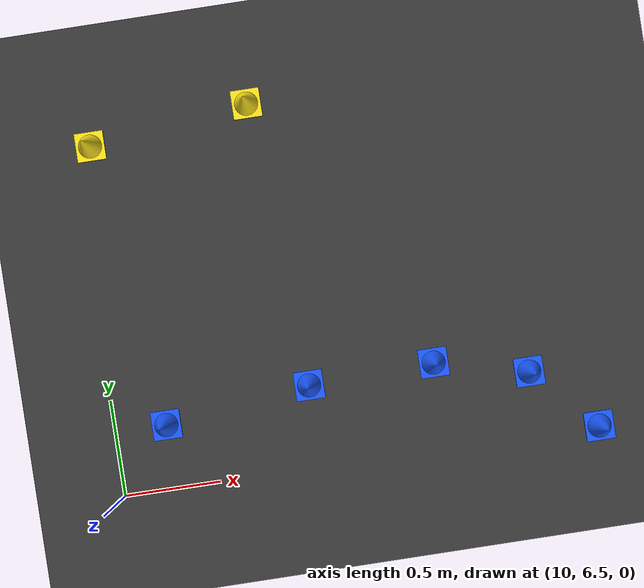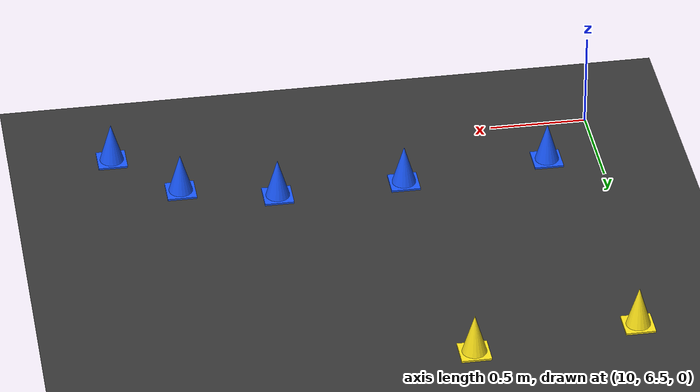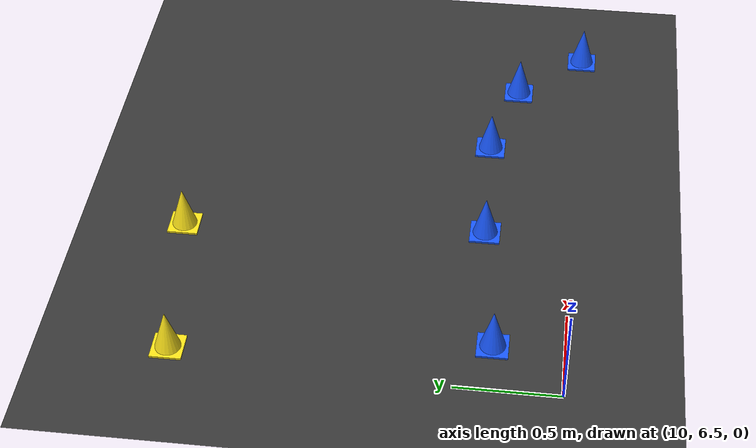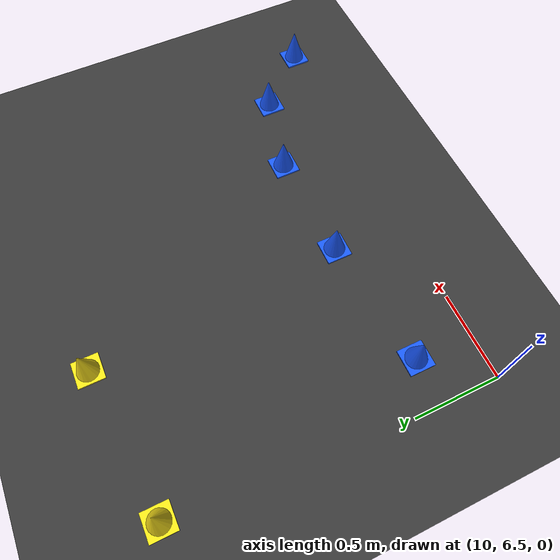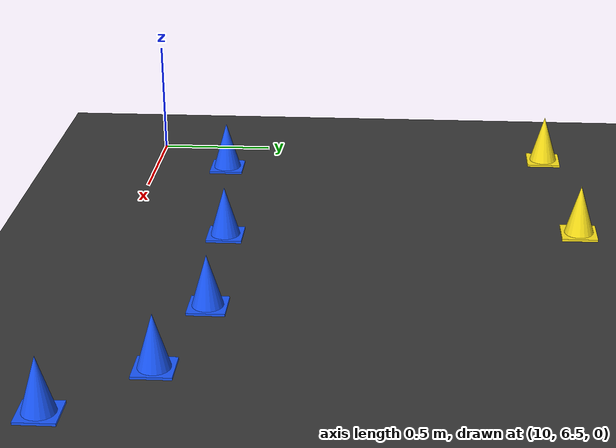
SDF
<sdf version="1.8">
 <world name="track_with_cones">
  <model name="ground_plane">
   <static>true</static>
   <link name="link">
    <collision name="collision">
     <geometry><plane><normal>0 0 1</normal><size>100 100</size></plane></geometry>
     <surface><friction><ode><mu>100</mu><mu2>100</mu2></ode></friction></surface>
    </collision>
    <visual name="visual">
     <geometry><plane><normal>0 0 1</normal><size>100 100</size></plane></geometry>
     <material>
      <ambient>0.22 0.22 0.22 1</ambient>
      <diffuse>0.22 0.22 0.22 1</diffuse>
      <specular>0.05 0.05 0.05 1</specular>
     </material>
    </visual>
   </link>
  </model>
  <model name="cone_blue_22">
   <static>true</static>
   <pose>12.4927 6.4902 0.11 0 0 0</pose>
   <link name="link">
    <visual name="base_visual">
     <pose>0 0 -0.105 0 0 0</pose>
     <geometry><box><size>0.15 0.15 0.01</size></box></geometry>
     <material>
      <ambient>0.05 0.25 0.95 1.0</ambient>
      <diffuse>0.10 0.35 1.00 1.0</diffuse>
      <specular>0.2 0.2 0.2 1.0</specular>
     </material>
    </visual>
    <visual name="cone_visual">
     <geometry><cone><radius>0.065</radius><length>0.22</length></cone></geometry>
     <material>
      <ambient>0.05 0.25 0.95 1.0</ambient>
      <diffuse>0.10 0.35 1.00 1.0</diffuse>
      <specular>0.2 0.2 0.2 1.0</specular>
     </material>
    </visual>
    <collision name="collision">
     <geometry><cylinder><radius>0.065</radius><length>0.22</length></cylinder></geometry>
    </collision>
   </link>
  </model>
  <model name="cone_blue_23">
   <static>true</static>
   <pose>12.1744 6.8234 0.11 0 0 0</pose>
   <link name="link">
    <visual name="base_visual">
     <pose>0 0 -0.105 0 0 0</pose>
     <geometry><box><size>0.15 0.15 0.01</size></box></geometry>
     <material>
      <ambient>0.05 0.25 0.95 1.0</ambient>
      <diffuse>0.10 0.35 1.00 1.0</diffuse>
      <specular>0.2 0.2 0.2 1.0</specular>
     </material>
    </visual>
    <visual name="cone_visual">
     <geometry><cone><radius>0.065</radius><length>0.22</length></cone></geometry>
     <material>
      <ambient>0.05 0.25 0.95 1.0</ambient>
      <diffuse>0.10 0.35 1.00 1.0</diffuse>
      <specular>0.2 0.2 0.2 1.0</specular>
     </material>
    </visual>
    <collision name="collision">
     <geometry><cylinder><radius>0.065</radius><length>0.22</length></cylinder></geometry>
    </collision>
   </link>
  </model>
  <model name="cone_blue_24">
   <static>true</static>
   <pose>11.6899 6.9446 0.11 0 0 0</pose>
   <link name="link">
    <visual name="base_visual">
     <pose>0 0 -0.105 0 0 0</pose>
     <geometry><box><size>0.15 0.15 0.01</size></box></geometry>
     <material>
      <ambient>0.05 0.25 0.95 1.0</ambient>
      <diffuse>0.10 0.35 1.00 1.0</diffuse>
      <specular>0.2 0.2 0.2 1.0</specular>
     </material>
    </visual>
    <visual name="cone_visual">
     <geometry><cone><radius>0.065</radius><length>0.22</length></cone></geometry>
     <material>
      <ambient>0.05 0.25 0.95 1.0</ambient>
      <diffuse>0.10 0.35 1.00 1.0</diffuse>
      <specular>0.2 0.2 0.2 1.0</specular>
     </material>
    </visual>
    <collision name="collision">
     <geometry><cylinder><radius>0.065</radius><length>0.22</length></cylinder></geometry>
    </collision>
   </link>
  </model>
  <model name="cone_blue_25">
   <static>true</static>
   <pose>11.0327 6.9260 0.11 0 0 0</pose>
   <link name="link">
    <visual name="base_visual">
     <pose>0 0 -0.105 0 0 0</pose>
     <geometry><box><size>0.15 0.15 0.01</size></box></geometry>
     <material>
      <ambient>0.05 0.25 0.95 1.0</ambient>
      <diffuse>0.10 0.35 1.00 1.0</diffuse>
      <specular>0.2 0.2 0.2 1.0</specular>
     </material>
    </visual>
    <visual name="cone_visual">
     <geometry><cone><radius>0.065</radius><length>0.22</length></cone></geometry>
     <material>
      <ambient>0.05 0.25 0.95 1.0</ambient>
      <diffuse>0.10 0.35 1.00 1.0</diffuse>
      <specular>0.2 0.2 0.2 1.0</specular>
     </material>
    </visual>
    <collision name="collision">
     <geometry><cylinder><radius>0.065</radius><length>0.22</length></cylinder></geometry>
    </collision>
   </link>
  </model>
  <model name="cone_yellow_25">
   <static>true</static>
   <pose>10.9320 8.4226 0.11 0 0 0</pose>
   <link name="link">
    <visual name="base_visual">
     <pose>0 0 -0.105 0 0 0</pose>
     <geometry><box><size>0.15 0.15 0.01</size></box></geometry>
     <material>
      <ambient>0.95 0.85 0.05 1.0</ambient>
      <diffuse>1.00 0.90 0.10 1.0</diffuse>
      <specular>0.2 0.2 0.2 1.0</specular>
     </material>
    </visual>
    <visual name="cone_visual">
     <geometry><cone><radius>0.065</radius><length>0.22</length></cone></geometry>
     <material>
      <ambient>0.95 0.85 0.05 1.0</ambient>
      <diffuse>1.00 0.90 0.10 1.0</diffuse>
      <specular>0.2 0.2 0.2 1.0</specular>
     </material>
    </visual>
    <collision name="collision">
     <geometry><cylinder><radius>0.065</radius><length>0.22</length></cylinder></geometry>
    </collision>
   </link>
  </model>
  <model name="cone_blue_26">
   <static>true</static>
   <pose>10.2686 6.8353 0.11 0 0 0</pose>
   <link name="link">
    <visual name="base_visual">
     <pose>0 0 -0.105 0 0 0</pose>
     <geometry><box><size>0.15 0.15 0.01</size></box></geometry>
     <material>
      <ambient>0.05 0.25 0.95 1.0</ambient>
      <diffuse>0.10 0.35 1.00 1.0</diffuse>
      <specular>0.2 0.2 0.2 1.0</specular>
     </material>
    </visual>
    <visual name="cone_visual">
     <geometry><cone><radius>0.065</radius><length>0.22</length></cone></geometry>
     <material>
      <ambient>0.05 0.25 0.95 1.0</ambient>
      <diffuse>0.10 0.35 1.00 1.0</diffuse>
      <specular>0.2 0.2 0.2 1.0</specular>
     </material>
    </visual>
    <collision name="collision">
     <geometry><cylinder><radius>0.065</radius><length>0.22</length></cylinder></geometry>
    </collision>
   </link>
  </model>
  <model name="cone_yellow_26">
   <static>true</static>
   <pose>10.0965 8.3254 0.11 0 0 0</pose>
   <link name="link">
    <visual name="base_visual">
     <pose>0 0 -0.105 0 0 0</pose>
     <geometry><box><size>0.15 0.15 0.01</size></box></geometry>
     <material>
      <ambient>0.95 0.85 0.05 1.0</ambient>
      <diffuse>1.00 0.90 0.10 1.0</diffuse>
      <specular>0.2 0.2 0.2 1.0</specular>
     </material>
    </visual>
    <visual name="cone_visual">
     <geometry><cone><radius>0.065</radius><length>0.22</length></cone></geometry>
     <material>
      <ambient>0.95 0.85 0.05 1.0</ambient>
      <diffuse>1.00 0.90 0.10 1.0</diffuse>
      <specular>0.2 0.2 0.2 1.0</specular>
     </material>
    </visual>
    <collision name="collision">
     <geometry><cylinder><radius>0.065</radius><length>0.22</length></cylinder></geometry>
    </collision>
   </link>
  </model>
 </world>
</sdf>
